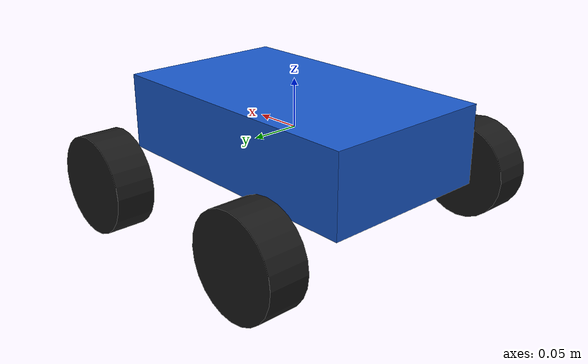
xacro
<?xml version="1.0"?>
<!-- Gazebo namespace -->
<robot xmlns:xacro="http://www.ros.org/wiki/xacro"
       xmlns:gz="http://gazebosim.org/schema"
       name="mecanum_robot">

    <!-- Robot dimensions -->
    <xacro:property name="base_length" value="0.30"/>
    <xacro:property name="base_width" value="0.18"/>
    <xacro:property name="base_height" value="0.08"/>
    <xacro:property name="base_mass" value="4.0"/>

    <xacro:property name="wheel_radius" value="0.05"/>
    <xacro:property name="wheel_width" value="0.04"/>
    <xacro:property name="wheel_mass" value="0.30"/>

    <!-- Wheel center offsets -->
    <xacro:property name="wheel_x" value="0.11"/>
    <xacro:property name="wheel_y" value="0.15"/>

    <!-- Base link -->
    <link name="base_link">
        <visual>
            <geometry>
                <box size="${base_length} ${base_width} ${base_height}"/>
            </geometry>
            <material name="blue">
                <color rgba="0.1 0.35 0.8 1.0"/>
            </material>
        </visual>

        <collision>
            <geometry>
                <box size="${base_length} ${base_width} ${base_height}"/>
            </geometry>
        </collision>

        <inertial>
            <mass value="${base_mass}"/>
            <inertia
                ixx="${base_mass * (base_width**2 + base_height**2) / 12.0}"
                ixy="0" ixz="0"
                iyy="${base_mass * (base_length**2 + base_height**2) / 12.0}"
                iyz="0"
                izz="${base_mass * (base_length**2 + base_width**2) / 12.0}"/>
        </inertial>
    </link>

    <!-- Simplified Mecanum wheel -->
    <xacro:macro name="wheel" params="name x y fdir">

        <link name="${name}_wheel_link">

            <!-- Visual: keep cylindrical appearance -->
            <visual>
                <origin xyz="0 0 0" rpy="${pi/2} 0 0"/>
                <geometry>
                    <cylinder
                        radius="${wheel_radius}"
                        length="${wheel_width}"/>
                </geometry>
                <material name="black">
                    <color rgba="0.1 0.1 0.1 1.0"/>
                </material>
            </visual>

            <!-- Collision: spherical contact model -->
            <collision>
                <geometry>
                    <sphere radius="${wheel_radius}"/>
                </geometry>
            </collision>

            <!-- Approximate spherical inertia -->
            <inertial>
                <mass value="${wheel_mass}"/>
                <inertia
                    ixx="${0.4 * wheel_mass * wheel_radius**2}"
                    ixy="0" ixz="0"
                    iyy="${0.4 * wheel_mass * wheel_radius**2}"
                    iyz="0"
                    izz="${0.4 * wheel_mass * wheel_radius**2}"/>
            </inertial>

        </link>

        <joint name="${name}_wheel_joint" type="continuous">

            <parent link="base_link"/>
            <child link="${name}_wheel_link"/>

            <origin xyz="${x} ${y} ${-wheel_radius}"
                    rpy="0 0 0"/>

            <axis xyz="0 1 0"/>

            <limit effort="15.0" velocity="30.0"/>

            <dynamics damping="0.05" friction="0.0"/>

        </joint>

        <!-- Direction-dependent Mecanum friction -->
        <gazebo reference="${name}_wheel_link">
            <collision>
                <surface>
                    <friction>
                        <ode>
                            <mu>1.0</mu>
                            <mu2>0.0</mu2>
                            <fdir1 gz:expressed_in="base_link">${fdir}</fdir1>
                        </ode>
                    </friction>
                </surface>
            </collision>
        </gazebo>

    </xacro:macro>

    <!-- Four independently rotating wheels -->

    <!-- Front left -->
    <xacro:wheel
        name="front_left"
        x="${wheel_x}"
        y="${wheel_y}"
        fdir="1 -1 0"/>

    <!-- Front right -->
    <xacro:wheel
        name="front_right"
        x="${wheel_x}"
        y="${-wheel_y}"
        fdir="1 1 0"/>

    <!-- Rear left -->
    <xacro:wheel
        name="rear_left"
        x="${-wheel_x}"
        y="${wheel_y}"
        fdir="1 1 0"/>

    <!-- Rear right -->
    <xacro:wheel
        name="rear_right"
        x="${-wheel_x}"
        y="${-wheel_y}"
        fdir="1 -1 0"/>

    <!-- Include Gazebo control -->
    <xacro:include filename="ros2_control.xacro"/>

</robot>
